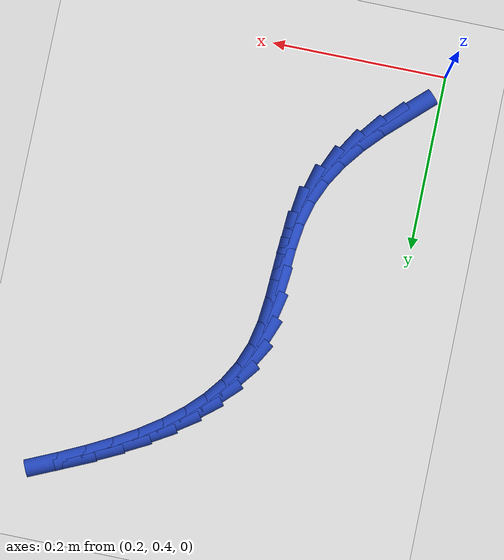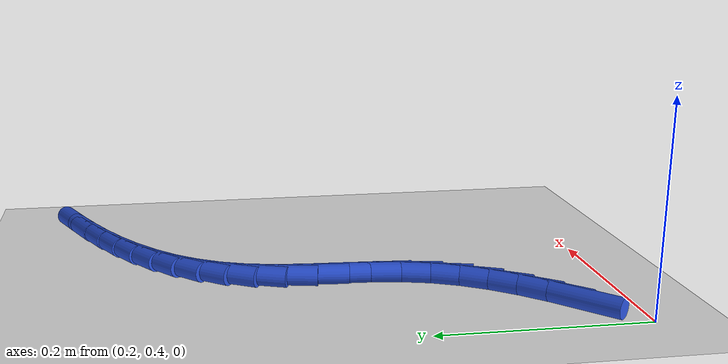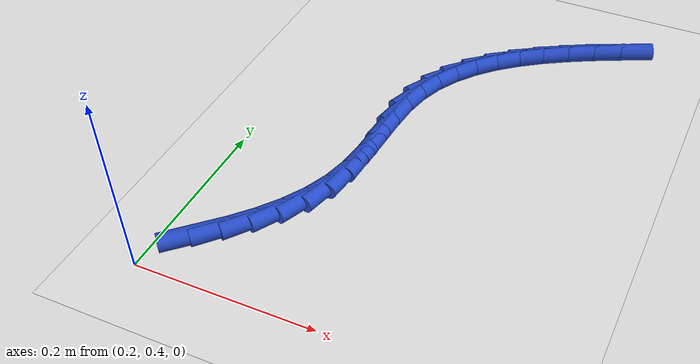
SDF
<sdf version="1.6">
 <world name="default">
  <model name="ground_plane">
   <static>1</static>
   <link name="link">
    <collision name="collision">
     <geometry><plane><normal>0 0 1</normal><size>100 100</size></plane></geometry>
     <surface><friction><ode><mu>100</mu><mu2>50</mu2></ode></friction></surface>
    </collision>
    <visual name="visual">
     <cast_shadows>0</cast_shadows>
     <geometry><plane><normal>0 0 1</normal><size>100 100</size></plane></geometry>
     <material>
      <script><uri>file://media/materials/scripts/gazebo.material</uri><name>Gazebo/WhiteGlow</name></script>
     </material>
    </visual>
   </link>
  </model>
  <model name="line">
   <link name="link_18">
    <pose>0.23914842759619975 0.45276874331063327 0.01 0 1.57 0.7533346251429583</pose>
    <collision name="collision">
     <geometry><cylinder><radius>0.01</radius><length>0.08</length></cylinder></geometry>
    </collision>
    <visual name="visual">
     <material>
      <script><name>Gazebo/Blue</name><uri>file://media/materials/scripts/gazebo.material</uri></script>
     </material>
     <geometry><cylinder><radius>0.01</radius><length>0.08</length></cylinder></geometry>
    </visual>
   </link>
   <link name="link_19">
    <pose>0.2614176995573285 0.4736538585572749 0.01 0 1.57 0.82024416876418</pose>
    <collision name="collision">
     <geometry><cylinder><radius>0.01</radius><length>0.08</length></cylinder></geometry>
    </collision>
    <visual name="visual">
     <material>
      <script><name>Gazebo/Blue</name><uri>file://media/materials/scripts/gazebo.material</uri></script>
     </material>
     <geometry><cylinder><radius>0.01</radius><length>0.08</length></cylinder></geometry>
    </visual>
   </link>
   <link name="link_20">
    <pose>0.28174896848070424 0.4954538273165385 0.01 0 1.57 0.909468541712482</pose>
    <collision name="collision">
     <geometry><cylinder><radius>0.01</radius><length>0.08</length></cylinder></geometry>
    </collision>
    <visual name="visual">
     <material>
      <script><name>Gazebo/Blue</name><uri>file://media/materials/scripts/gazebo.material</uri></script>
     </material>
     <geometry><cylinder><radius>0.01</radius><length>0.08</length></cylinder></geometry>
    </visual>
   </link>
   <link name="link_21">
    <pose>0.2996219056276734 0.5184198269390519 0.01 0 1.57 1.0224432077306291</pose>
    <collision name="collision">
     <geometry><cylinder><radius>0.01</radius><length>0.08</length></cylinder></geometry>
    </collision>
    <visual name="visual">
     <material>
      <script><name>Gazebo/Blue</name><uri>file://media/materials/scripts/gazebo.material</uri></script>
     </material>
     <geometry><cylinder><radius>0.01</radius><length>0.08</length></cylinder></geometry>
    </visual>
   </link>
   <link name="link_22">
    <pose>0.31451618225958256 0.5428030347754433 0.01 0 1.57 1.15845949838063</pose>
    <collision name="collision">
     <geometry><cylinder><radius>0.01</radius><length>0.08</length></cylinder></geometry>
    </collision>
    <visual name="visual">
     <material>
      <script><name>Gazebo/Blue</name><uri>file://media/materials/scripts/gazebo.material</uri></script>
     </material>
     <geometry><cylinder><radius>0.01</radius><length>0.08</length></cylinder></geometry>
    </visual>
   </link>
   <link name="link_23">
    <pose>0.3259114696377784 0.5688546281763411 0.01 0 1.57 1.3119193900481965</pose>
    <collision name="collision">
     <geometry><cylinder><radius>0.01</radius><length>0.08</length></cylinder></geometry>
    </collision>
    <visual name="visual">
     <material>
      <script><name>Gazebo/Blue</name><uri>file://media/materials/scripts/gazebo.material</uri></script>
     </material>
     <geometry><cylinder><radius>0.01</radius><length>0.08</length></cylinder></geometry>
    </visual>
   </link>
   <link name="link_24">
    <pose>0.333314987341844 0.5968114878327897 0.01 0 1.57 1.4413850309598712</pose>
    <collision name="collision">
     <geometry><cylinder><radius>0.01</radius><length>0.08</length></cylinder></geometry>
    </collision>
    <visual name="visual">
     <material>
      <script><name>Gazebo/Blue</name><uri>file://media/materials/scripts/gazebo.material</uri></script>
     </material>
     <geometry><cylinder><radius>0.01</radius><length>0.08</length></cylinder></geometry>
    </visual>
   </link>
   <link name="link_25">
    <pose>0.33716888679877155 0.6264252959477751 0.01 0 1.57 1.5088438475190324</pose>
    <collision name="collision">
     <geometry><cylinder><radius>0.01</radius><length>0.08</length></cylinder></geometry>
    </collision>
    <visual name="visual">
     <material>
      <script><name>Gazebo/Blue</name><uri>file://media/materials/scripts/gazebo.material</uri></script>
     </material>
     <geometry><cylinder><radius>0.01</radius><length>0.08</length></cylinder></geometry>
    </visual>
   </link>
   <link name="link_26">
    <pose>0.3390565280924274 0.6568554854427915 0.01 0 1.57 1.519013222307939</pose>
    <collision name="collision">
     <geometry><cylinder><radius>0.01</radius><length>0.08</length></cylinder></geometry>
    </collision>
    <visual name="visual">
     <material>
      <script><name>Gazebo/Blue</name><uri>file://media/materials/scripts/gazebo.material</uri></script>
     </material>
     <geometry><cylinder><radius>0.01</radius><length>0.08</length></cylinder></geometry>
    </visual>
   </link>
   <link name="link_27">
    <pose>0.34063058971649096 0.6872255152935001 0.01 0 1.57 1.472142739730491</pose>
    <collision name="collision">
     <geometry><cylinder><radius>0.01</radius><length>0.08</length></cylinder></geometry>
    </collision>
    <visual name="visual">
     <material>
      <script><name>Gazebo/Blue</name><uri>file://media/materials/scripts/gazebo.material</uri></script>
     </material>
     <geometry><cylinder><radius>0.01</radius><length>0.08</length></cylinder></geometry>
    </visual>
   </link>
   <link name="link_28">
    <pose>0.3435437501646419 0.7166588444755615 0.01 0 1.57 1.3606958758678895</pose>
    <collision name="collision">
     <geometry><cylinder><radius>0.01</radius><length>0.08</length></cylinder></geometry>
    </collision>
    <visual name="visual">
     <material>
      <script><name>Gazebo/Blue</name><uri>file://media/materials/scripts/gazebo.material</uri></script>
     </material>
     <geometry><cylinder><radius>0.01</radius><length>0.08</length></cylinder></geometry>
    </visual>
   </link>
   <link name="link_29">
    <pose>0.3494352204976636 0.7442862324172754 0.01 0 1.57 1.203485710366328</pose>
    <collision name="collision">
     <geometry><cylinder><radius>0.01</radius><length>0.08</length></cylinder></geometry>
    </collision>
    <visual name="visual">
     <material>
      <script><name>Gazebo/Blue</name><uri>file://media/materials/scripts/gazebo.material</uri></script>
     </material>
     <geometry><cylinder><radius>0.01</radius><length>0.08</length></cylinder></geometry>
    </visual>
   </link>
   <link name="link_30">
    <pose>0.359192857159661 0.7696457343423273 0.01 0 1.57 1.0485325796928393</pose>
    <collision name="collision">
     <geometry><cylinder><radius>0.01</radius><length>0.08</length></cylinder></geometry>
    </collision>
    <visual name="visual">
     <material>
      <script><name>Gazebo/Blue</name><uri>file://media/materials/scripts/gazebo.material</uri></script>
     </material>
     <geometry><cylinder><radius>0.01</radius><length>0.08</length></cylinder></geometry>
    </visual>
   </link>
   <link name="link_31">
    <pose>0.3725713950492419 0.7928896502409886 0.01 0 1.57 0.9077378172759377</pose>
    <collision name="collision">
     <geometry><cylinder><radius>0.01</radius><length>0.08</length></cylinder></geometry>
    </collision>
    <visual name="visual">
     <material>
      <script><name>Gazebo/Blue</name><uri>file://media/materials/scripts/gazebo.material</uri></script>
     </material>
     <geometry><cylinder><radius>0.01</radius><length>0.08</length></cylinder></geometry>
    </visual>
   </link>
   <link name="link_32">
    <pose>0.3892316846892908 0.8142211731314506 0.01 0 1.57 0.7858935331629243</pose>
    <collision name="collision">
     <geometry><cylinder><radius>0.01</radius><length>0.08</length></cylinder></geometry>
    </collision>
    <visual name="visual">
     <material>
      <script><name>Gazebo/Blue</name><uri>file://media/materials/scripts/gazebo.material</uri></script>
     </material>
     <geometry><cylinder><radius>0.01</radius><length>0.08</length></cylinder></geometry>
    </visual>
   </link>
   <link name="link_33">
    <pose>0.40883457660269196 0.8338434960319042 0.01 0 1.57 0.684311383742679</pose>
    <collision name="collision">
     <geometry><cylinder><radius>0.01</radius><length>0.08</length></cylinder></geometry>
    </collision>
    <visual name="visual">
     <material>
      <script><name>Gazebo/Blue</name><uri>file://media/materials/scripts/gazebo.material</uri></script>
     </material>
     <geometry><cylinder><radius>0.01</radius><length>0.08</length></cylinder></geometry>
    </visual>
   </link>
   <link name="link_34">
    <pose>0.43104092131232963 0.851959811960541 0.01 0 1.57 0.6020078966794598</pose>
    <collision name="collision">
     <geometry><cylinder><radius>0.01</radius><length>0.08</length></cylinder></geometry>
    </collision>
    <visual name="visual">
     <material>
      <script><name>Gazebo/Blue</name><uri>file://media/materials/scripts/gazebo.material</uri></script>
     </material>
     <geometry><cylinder><radius>0.01</radius><length>0.08</length></cylinder></geometry>
    </visual>
   </link>
   <link name="link_35">
    <pose>0.4555115693410884 0.8687733139355523 0.01 0 1.57 0.5369693232323316</pose>
    <collision name="collision">
     <geometry><cylinder><radius>0.01</radius><length>0.08</length></cylinder></geometry>
    </collision>
    <visual name="visual">
     <material>
      <script><name>Gazebo/Blue</name><uri>file://media/materials/scripts/gazebo.material</uri></script>
     </material>
     <geometry><cylinder><radius>0.01</radius><length>0.08</length></cylinder></geometry>
    </visual>
   </link>
   <link name="link_36">
    <pose>0.48190737121185256 0.8844871949751293 0.01 0 1.57 0.4869984801135756</pose>
    <collision name="collision">
     <geometry><cylinder><radius>0.01</radius><length>0.08</length></cylinder></geometry>
    </collision>
    <visual name="visual">
     <material>
      <script><name>Gazebo/Blue</name><uri>file://media/materials/scripts/gazebo.material</uri></script>
     </material>
     <geometry><cylinder><radius>0.01</radius><length>0.08</length></cylinder></geometry>
    </visual>
   </link>
   <link name="link_37">
    <pose>0.5098891774475064 0.8993046480974634 0.01 0 1.57 0.45014327879600646</pose>
    <collision name="collision">
     <geometry><cylinder><radius>0.01</radius><length>0.08</length></cylinder></geometry>
    </collision>
    <visual name="visual">
     <material>
      <script><name>Gazebo/Blue</name><uri>file://media/materials/scripts/gazebo.material</uri></script>
     </material>
     <geometry><cylinder><radius>0.01</radius><length>0.08</length></cylinder></geometry>
    </visual>
   </link>
   <link name="link_38">
    <pose>0.5391178385709344 0.913428866320746 0.01 0 1.57 0.42486130963489155</pose>
    <collision name="collision">
     <geometry><cylinder><radius>0.01</radius><length>0.08</length></cylinder></geometry>
    </collision>
    <visual name="visual">
     <material>
      <script><name>Gazebo/Blue</name><uri>file://media/materials/scripts/gazebo.material</uri></script>
     </material>
     <geometry><cylinder><radius>0.01</radius><length>0.08</length></cylinder></geometry>
    </visual>
   </link>
  </model>
 </world>
</sdf>
